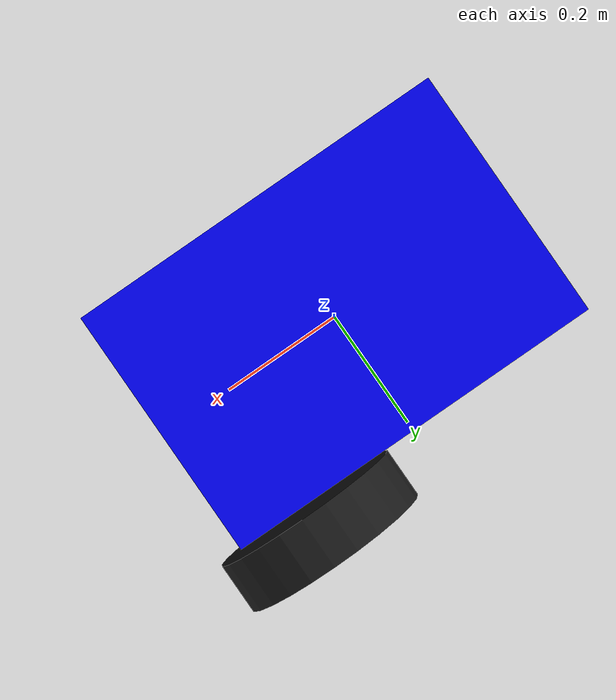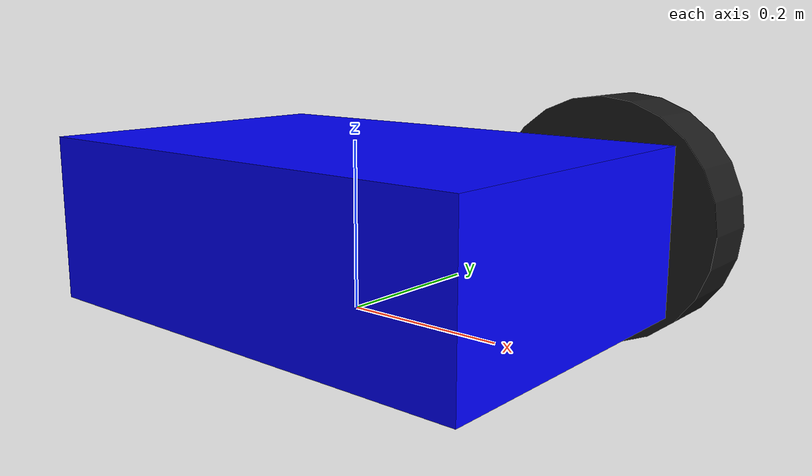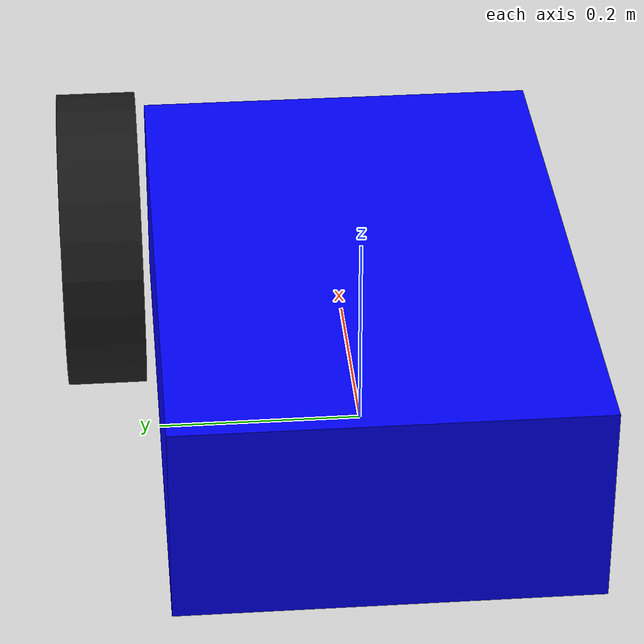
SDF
<?xml version="1.0" ?>
<sdf version="1.9">

  <!-- A model defines a physical object, robot, or structural asset -->
  <model name="pedagogical_sdf_robot">

    <!-- Poses in SDF are unified: [X Y Z Roll Pitch Yaw] -->
    <!-- This sets the default spawn position of the model in the world frame -->
    <pose>0 0 0.1 0 0 0</pose>

    <!-- 1. CHASSIS LINK                                                      -->
    <link name="chassis">
      <!-- Local pose of the link relative to the model origin -->
      <pose>0 0 0 0 0 0</pose>

      <!-- Inertial properties required for Gazebo's physics solver -->
      <inertial>
        <mass>10.0</mass>
        <inertia>
          <ixx>0.1</ixx>
          <ixy>0.0</ixy>
          <ixz>0.0</ixz>
          <iyy>0.2</iyy>
          <iyz>0.0</iyz>
          <izz>0.3</izz>
        </inertia>
      </inertial>

      <!-- Collision properties define physical contact behavior -->
      <collision name="chassis_collision">
        <geometry>
          <box>
            <size>0.6 0.4 0.2</size> <!-- length(X), width(Y), height(Z) -->
          </box>
        </geometry>

        <!-- Surface properties (friction, bounce, contact constraints) -->
        <!-- These are natively supported in SDF (unlike URDF) -->
        <surface>
          <friction>
            <ode>
              <mu>0.5</mu>  <!-- Primary friction coefficient -->
              <mu2>0.5</mu2> <!-- Secondary friction coefficient -->
            </ode>
          </friction>
        </surface>
      </collision>

      <!-- Visual properties define how the robot renders in Gazebo/GUI -->
      <visual name="chassis_visual">
        <geometry>
          <box>
            <size>0.6 0.4 0.2</size>
          </box>
        </geometry>
        <!-- Material properties define color/shading -->
        <material>
          <ambient>0.0 0.0 0.8 1.0</ambient>  <!-- Color when in shadow -->
          <diffuse>0.0 0.0 1.0 1.0</diffuse>  <!-- Color under direct light -->
          <specular>0.1 0.1 0.1 1.0</specular> <!-- Highlight reflections -->
        </material>
      </visual>
    </link>

    <!-- 2. WHEEL JOINT                                                       -->
    <!-- Connects 'chassis' (parent) to 'left_wheel' (child)                 -->
    <joint name="left_wheel_joint" type="revolute">
      <!-- In SDF, poses of joints are set relative to the child link frame -->
      <parent>chassis</parent>
      <child>left_wheel</child>

      <!-- Axis of rotation relative to the joint frame -->
      <axis>
        <xyz>0 1 0</xyz> <!-- Rotates around the Y-axis -->
        <limit>
          <!-- Since this is a continuous wheel, we set no upper/lower limits,
               or leave them out. For standard revolute joints, specify limits: -->
          <lower>-1e16</lower>
          <upper>1e16</upper>
          <effort>10.0</effort>   <!-- Max torque (Nm) -->
          <velocity>20.0</velocity> <!-- Max velocity (rad/s) -->
        </limit>
        <dynamics>
          <damping>0.1</damping>  <!-- Viscous damping coefficient -->
          <friction>0.05</friction> <!-- Joint static friction -->
        </dynamics>
      </axis>
    </joint>

    <!-- 3. WHEEL LINK                                                        -->
    <link name="left_wheel">
      <!-- Position the wheel: Shifted +0.2m forward (X), +0.25m left (Y) -->
      <pose>0.2 0.25 0 0 0 0</pose>

      <inertial>
        <mass>1.5</mass>
        <inertia>
          <ixx>0.005</ixx>
          <ixy>0.0</ixy>
          <ixz>0.0</ixz>
          <iyy>0.005</iyy>
          <iyz>0.0</iyz>
          <izz>0.008</izz>
        </inertia>
      </inertial>

      <collision name="left_wheel_collision">
        <!-- Cylinder axes in SDF always align along the Z-axis by default -->
        <!-- To orient the wheel, rotate the geometry or link pose -->
        <pose>0 0 0 1.5708 0 0</pose> <!-- Roll 90 degrees to align wheel -->
        <geometry>
          <cylinder>
            <radius>0.15</radius>
            <length>0.08</length>
          </cylinder>
        </geometry>
        <surface>
          <friction>
            <ode>
              <mu>1.0</mu> <!-- High friction for driving wheels -->
              <mu2>1.0</mu2>
            </ode>
          </friction>
        </surface>
      </collision>

      <visual name="left_wheel_visual">
        <pose>0 0 0 1.5708 0 0</pose>
        <geometry>
          <cylinder>
            <radius>0.15</radius>
            <length>0.08</length>
          </cylinder>
        </geometry>
        <material>
          <ambient>0.1 0.1 0.1 1.0</ambient>
          <diffuse>0.1 0.1 0.1 1.0</diffuse>
        </material>
      </visual>
    </link>

    <!-- 4. GAZEBO SIMULATION PLUGINS & SENSORS                               -->
    <!-- Plugins and Sensors are declared natively as children of model/link -->
    <plugin
      filename="gz-sim-diff-drive-system"
      name="gz::sim::systems::DiffDrive">
      <left_joint>left_wheel_joint</left_joint>
      <!-- right_joint would go here -->
      <wheel_separation>0.5</wheel_separation>
      <wheel_radius>0.15</wheel_radius>
      <topic>cmd_vel</topic>
    </plugin>

  </model>
</sdf>
